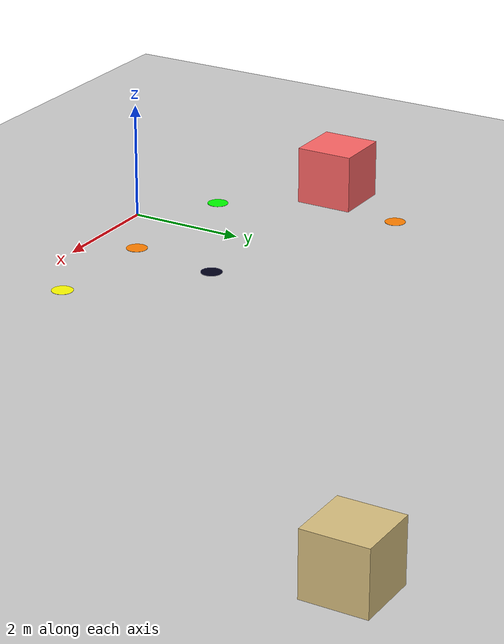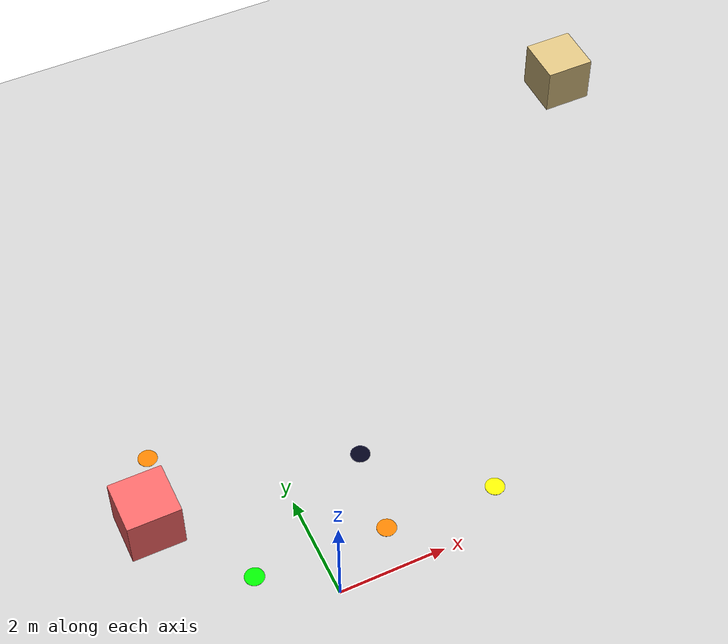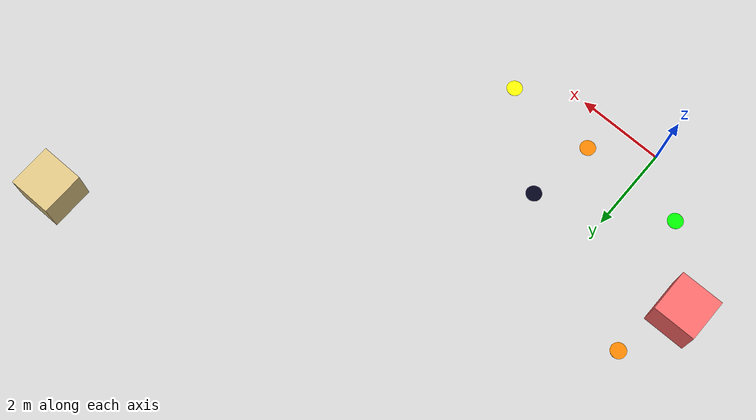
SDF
<sdf version="1.7">
 <world name="default">
  <model name="ground_plane">
   <static>1</static>
   <link name="link">
    <collision name="collision">
     <geometry><plane><normal>0 0 1</normal><size>100 100</size></plane></geometry>
     <surface><friction><ode><mu>100</mu><mu2>50</mu2></ode></friction></surface>
    </collision>
    <visual name="visual">
     <cast_shadows>0</cast_shadows>
     <geometry><plane><normal>0 0 1</normal><size>100 100</size></plane></geometry>
     <material>
      <script><uri>file://media/materials/scripts/gazebo.material</uri><name>Gazebo/Grey</name></script>
     </material>
    </visual>
   </link>
  </model>
  <model name="unit_box_clone">
   <link name="link">
    <inertial>
     <mass>1</mass>
     <inertia>
      <ixx>0.166667</ixx>
      <ixy>0</ixy>
      <ixz>0</ixz>
      <iyy>0.166667</iyy>
      <iyz>0</iyz>
      <izz>0.166667</izz>
     </inertia>
    </inertial>
    <visual name="visual">
     <geometry><box><size>1 1 1</size></box></geometry>
     <material>
      <script><name>Gazebo/Grey</name><uri>file://media/materials/scripts/gazebo.material</uri></script>
      <shader type="pixel"><normal_map>__default__</normal_map></shader>
      <ambient>0.7 0.6 0.4 0</ambient>
      <diffuse>0.85 0.75 0.5 1</diffuse>
      <specular>0.4 0.35 0.2 1</specular>
      <emissive>0.12 0.1 0.05 1</emissive>
     </material>
    </visual>
    <collision name="collision">
     <geometry><box><size>1 1 1</size></box></geometry>
     <surface>
      <friction>
       <ode><mu>1</mu><mu2>1</mu2><fdir1>0 0 0</fdir1><slip1>0</slip1><slip2>0</slip2></ode>
       <torsional>
        <coefficient>1</coefficient>
        <patch_radius>0</patch_radius>
        <surface_radius>0</surface_radius>
        <use_patch_radius>1</use_patch_radius>
        <ode><slip>0</slip></ode>
       </torsional>
      </friction>
      <bounce><restitution_coefficient>0</restitution_coefficient><threshold>1e+06</threshold></bounce>
      <contact>
       <collide_without_contact>0</collide_without_contact>
       <collide_without_contact_bitmask>1</collide_without_contact_bitmask>
       <collide_bitmask>1</collide_bitmask>
       <ode>
        <soft_cfm>0</soft_cfm>
        <soft_erp>0.2</soft_erp>
        <kp>1e+13</kp>
        <kd>1</kd>
        <max_vel>0.01</max_vel>
        <min_depth>0</min_depth>
       </ode>
       <bullet>
        <split_impulse>1</split_impulse>
        <split_impulse_penetration_threshold>-0.01</split_impulse_penetration_threshold>
        <soft_cfm>0</soft_cfm>
        <soft_erp>0.2</soft_erp>
        <kp>1e+13</kp>
        <kd>1</kd>
       </bullet>
      </contact>
     </surface>
    </collision>
   </link>
   <static>0</static>
   <pose>9.42488 9.27487 0.499995 -1e-05 0 0.00016</pose>
  </model>
  <model name="unit_cylinder">
   <link name="link">
    <inertial>
     <mass>1</mass>
     <inertia><ixx>0.145833</ixx><ixy>0</ixy><ixz>0</ixz><iyy>0.145833</iyy><iyz>0</iyz><izz>0.125</izz></inertia>
    </inertial>
    <visual name="visual">
     <geometry><cylinder><radius>0.181775</radius><length>0.00464731</length></cylinder></geometry>
     <material>
      <script><name>Gazebo/Grey</name><uri>file://media/materials/scripts/gazebo.material</uri></script>
      <shader type="pixel"><normal_map>__default__</normal_map></shader>
      <ambient>1 1 0 1</ambient>
      <diffuse>1 1 0 1</diffuse>
      <specular>0.9 0.9 0.3 1</specular>
      <emissive>0.3 0.3 0 1</emissive>
     </material>
    </visual>
    <collision name="collision">
     <geometry><cylinder><radius>0.181775</radius><length>0.004647</length></cylinder></geometry>
     <surface>
      <friction>
       <ode><mu>1</mu><mu2>1</mu2><fdir1>0 0 0</fdir1><slip1>0</slip1><slip2>0</slip2></ode>
       <torsional>
        <coefficient>1</coefficient>
        <patch_radius>0</patch_radius>
        <surface_radius>0</surface_radius>
        <use_patch_radius>1</use_patch_radius>
        <ode><slip>0</slip></ode>
       </torsional>
      </friction>
      <bounce><restitution_coefficient>0</restitution_coefficient><threshold>1e+06</threshold></bounce>
      <contact>
       <collide_without_contact>0</collide_without_contact>
       <collide_without_contact_bitmask>1</collide_without_contact_bitmask>
       <collide_bitmask>1</collide_bitmask>
       <ode>
        <soft_cfm>0</soft_cfm>
        <soft_erp>0.2</soft_erp>
        <kp>1e+13</kp>
        <kd>1</kd>
        <max_vel>0.01</max_vel>
        <min_depth>0</min_depth>
       </ode>
       <bullet>
        <split_impulse>1</split_impulse>
        <split_impulse_penetration_threshold>-0.01</split_impulse_penetration_threshold>
        <soft_cfm>0</soft_cfm>
        <soft_erp>0.2</soft_erp>
        <kp>1e+13</kp>
        <kd>1</kd>
       </bullet>
      </contact>
     </surface>
    </collision>
   </link>
   <static>0</static>
   <pose>3.39944 0.760819 0.002314 0 -0 0</pose>
  </model>
  <model name="unit_cylinder_clone">
   <link name="link">
    <inertial>
     <mass>1</mass>
     <inertia><ixx>0.145833</ixx><ixy>0</ixy><ixz>0</ixz><iyy>0.145833</iyy><iyz>0</iyz><izz>0.125</izz></inertia>
    </inertial>
    <visual name="visual">
     <geometry><cylinder><radius>0.181775</radius><length>0.00464731</length></cylinder></geometry>
     <material>
      <script><name>Gazebo/Grey</name><uri>file://media/materials/scripts/gazebo.material</uri></script>
      <shader type="pixel"><normal_map>__default__</normal_map></shader>
      <ambient>1 0.5 0 1</ambient>
      <diffuse>1 0.5 0 1</diffuse>
      <specular>0.8 0.4 0 1</specular>
      <emissive>0.2 0.1 0 1</emissive>
     </material>
    </visual>
    <collision name="collision">
     <geometry><cylinder><radius>0.181775</radius><length>0.004647</length></cylinder></geometry>
     <surface>
      <friction>
       <ode><mu>1</mu><mu2>1</mu2><fdir1>0 0 0</fdir1><slip1>0</slip1><slip2>0</slip2></ode>
       <torsional>
        <coefficient>1</coefficient>
        <patch_radius>0</patch_radius>
        <surface_radius>0</surface_radius>
        <use_patch_radius>1</use_patch_radius>
        <ode><slip>0</slip></ode>
       </torsional>
      </friction>
      <bounce><restitution_coefficient>0</restitution_coefficient><threshold>1e+06</threshold></bounce>
      <contact>
       <collide_without_contact>0</collide_without_contact>
       <collide_without_contact_bitmask>1</collide_without_contact_bitmask>
       <collide_bitmask>1</collide_bitmask>
       <ode>
        <soft_cfm>0</soft_cfm>
        <soft_erp>0.2</soft_erp>
        <kp>1e+13</kp>
        <kd>1</kd>
        <max_vel>0.01</max_vel>
        <min_depth>0</min_depth>
       </ode>
       <bullet>
        <split_impulse>1</split_impulse>
        <split_impulse_penetration_threshold>-0.01</split_impulse_penetration_threshold>
        <soft_cfm>0</soft_cfm>
        <soft_erp>0.2</soft_erp>
        <kp>1e+13</kp>
        <kd>1</kd>
       </bullet>
      </contact>
     </surface>
    </collision>
   </link>
   <static>0</static>
   <pose>1.27766 0.818715 0.002314 0 -0 0</pose>
  </model>
  <model name="unit_cylinder_clone_clone_clone">
   <link name="link">
    <inertial>
     <mass>1</mass>
     <inertia><ixx>0.145833</ixx><ixy>0</ixy><ixz>0</ixz><iyy>0.145833</iyy><iyz>0</iyz><izz>0.125</izz></inertia>
    </inertial>
    <visual name="visual">
     <geometry><cylinder><radius>0.181775</radius><length>0.00464731</length></cylinder></geometry>
     <material>
      <script><name>Gazebo/Grey</name><uri>file://media/materials/scripts/gazebo.material</uri></script>
      <shader type="pixel"><normal_map>__default__</normal_map></shader>
      <ambient>0 0 0.1 1</ambient>
      <diffuse>0 0 0.1 1</diffuse>
      <specular>0.3 0.3 0.8 1</specular>
      <emissive>0 0 0.2 1</emissive>
     </material>
    </visual>
    <collision name="collision">
     <geometry><cylinder><radius>0.181775</radius><length>0.004647</length></cylinder></geometry>
     <surface>
      <friction>
       <ode><mu>1</mu><mu2>1</mu2><fdir1>0 0 0</fdir1><slip1>0</slip1><slip2>0</slip2></ode>
       <torsional>
        <coefficient>1</coefficient>
        <patch_radius>0</patch_radius>
        <surface_radius>0</surface_radius>
        <use_patch_radius>1</use_patch_radius>
        <ode><slip>0</slip></ode>
       </torsional>
      </friction>
      <bounce><restitution_coefficient>0</restitution_coefficient><threshold>1e+06</threshold></bounce>
      <contact>
       <collide_without_contact>0</collide_without_contact>
       <collide_without_contact_bitmask>1</collide_without_contact_bitmask>
       <collide_bitmask>1</collide_bitmask>
       <ode>
        <soft_cfm>0</soft_cfm>
        <soft_erp>0.2</soft_erp>
        <kp>1e+13</kp>
        <kd>1</kd>
        <max_vel>0.01</max_vel>
        <min_depth>0</min_depth>
       </ode>
       <bullet>
        <split_impulse>1</split_impulse>
        <split_impulse_penetration_threshold>-0.01</split_impulse_penetration_threshold>
        <soft_cfm>0</soft_cfm>
        <soft_erp>0.2</soft_erp>
        <kp>1e+13</kp>
        <kd>1</kd>
       </bullet>
      </contact>
     </surface>
    </collision>
   </link>
   <static>0</static>
   <pose>1.52129 2.43036 0.002314 0 -0 0</pose>
  </model>
  <model name="unit_cylinder_clone_clone_0">
   <link name="link">
    <inertial>
     <mass>1</mass>
     <inertia><ixx>0.145833</ixx><ixy>0</ixy><ixz>0</ixz><iyy>0.145833</iyy><iyz>0</iyz><izz>0.125</izz></inertia>
    </inertial>
    <visual name="visual">
     <geometry><cylinder><radius>0.181775</radius><length>0.00464731</length></cylinder></geometry>
     <material>
      <script><name>Gazebo/Grey</name><uri>file://media/materials/scripts/gazebo.material</uri></script>
      <shader type="pixel"><normal_map>__default__</normal_map></shader>
      <ambient>1 0.5 0 1</ambient>
      <diffuse>1 0.5 0 1</diffuse>
      <specular>0.8 0.4 0 1</specular>
      <emissive>0.2 0.1 0 1</emissive>
     </material>
    </visual>
    <collision name="collision">
     <geometry><cylinder><radius>0.181775</radius><length>0.004647</length></cylinder></geometry>
     <surface>
      <friction>
       <ode><mu>1</mu><mu2>1</mu2><fdir1>0 0 0</fdir1><slip1>0</slip1><slip2>0</slip2></ode>
       <torsional>
        <coefficient>1</coefficient>
        <patch_radius>0</patch_radius>
        <surface_radius>0</surface_radius>
        <use_patch_radius>1</use_patch_radius>
        <ode><slip>0</slip></ode>
       </torsional>
      </friction>
      <bounce><restitution_coefficient>0</restitution_coefficient><threshold>1e+06</threshold></bounce>
      <contact>
       <collide_without_contact>0</collide_without_contact>
       <collide_without_contact_bitmask>1</collide_without_contact_bitmask>
       <collide_bitmask>1</collide_bitmask>
       <ode>
        <soft_cfm>0</soft_cfm>
        <soft_erp>0.2</soft_erp>
        <kp>1e+13</kp>
        <kd>1</kd>
        <max_vel>0.01</max_vel>
        <min_depth>0</min_depth>
       </ode>
       <bullet>
        <split_impulse>1</split_impulse>
        <split_impulse_penetration_threshold>-0.01</split_impulse_penetration_threshold>
        <soft_cfm>0</soft_cfm>
        <soft_erp>0.2</soft_erp>
        <kp>1e+13</kp>
        <kd>1</kd>
       </bullet>
      </contact>
     </surface>
    </collision>
   </link>
   <static>0</static>
   <pose>-2 4 0.002314 0 -0 0</pose>
  </model>
  <model name="unit_cylinder_clone_clone_clone_0">
   <link name="link">
    <inertial>
     <mass>1</mass>
     <inertia><ixx>0.145833</ixx><ixy>0</ixy><ixz>0</ixz><iyy>0.145833</iyy><iyz>0</iyz><izz>0.125</izz></inertia>
    </inertial>
    <visual name="visual">
     <geometry><cylinder><radius>0.181775</radius><length>0.00464731</length></cylinder></geometry>
     <material>
      <script><name>Gazebo/Grey</name><uri>file://media/materials/scripts/gazebo.material</uri></script>
      <shader type="pixel"><normal_map>__default__</normal_map></shader>
      <ambient>0 0.5 0 1</ambient>
      <diffuse>0 1 0 1</diffuse>
      <specular>0.5 1 0.5 1</specular>
      <emissive>0 0.2 0 1</emissive>
     </material>
    </visual>
    <collision name="collision">
     <geometry><cylinder><radius>0.181775</radius><length>0.004647</length></cylinder></geometry>
     <surface>
      <friction>
       <ode><mu>1</mu><mu2>1</mu2><fdir1>0 0 0</fdir1><slip1>0</slip1><slip2>0</slip2></ode>
       <torsional>
        <coefficient>1</coefficient>
        <patch_radius>0</patch_radius>
        <surface_radius>0</surface_radius>
        <use_patch_radius>1</use_patch_radius>
        <ode><slip>0</slip></ode>
       </torsional>
      </friction>
      <bounce><restitution_coefficient>0</restitution_coefficient><threshold>1e+06</threshold></bounce>
      <contact>
       <collide_without_contact>0</collide_without_contact>
       <collide_without_contact_bitmask>1</collide_without_contact_bitmask>
       <collide_bitmask>1</collide_bitmask>
       <ode>
        <soft_cfm>0</soft_cfm>
        <soft_erp>0.2</soft_erp>
        <kp>1e+13</kp>
        <kd>1</kd>
        <max_vel>0.01</max_vel>
        <min_depth>0</min_depth>
       </ode>
       <bullet>
        <split_impulse>1</split_impulse>
        <split_impulse_penetration_threshold>-0.01</split_impulse_penetration_threshold>
        <soft_cfm>0</soft_cfm>
        <soft_erp>0.2</soft_erp>
        <kp>1e+13</kp>
        <kd>1</kd>
       </bullet>
      </contact>
     </surface>
    </collision>
   </link>
   <static>0</static>
   <pose>-1.20309 0.911116 0.002314 0 -0 0</pose>
  </model>
  <model name="unit_box_clone_clone">
   <link name="link">
    <inertial>
     <mass>1</mass>
     <inertia>
      <ixx>0.166667</ixx>
      <ixy>0</ixy>
      <ixz>0</ixz>
      <iyy>0.166667</iyy>
      <iyz>0</iyz>
      <izz>0.166667</izz>
     </inertia>
    </inertial>
    <visual name="visual">
     <geometry><box><size>1 1 1</size></box></geometry>
     <material>
      <script><name>Gazebo/Grey</name><uri>file://media/materials/scripts/gazebo.material</uri></script>
      <shader type="pixel"><normal_map>__default__</normal_map></shader>
      <ambient>0.8 0.3 0.3 1</ambient>
      <diffuse>1 0.4 0.4 1</diffuse>
      <specular>0.5 0.2 0.2 1</specular>
      <emissive>0.3 0.1 0.1 1</emissive>
     </material>
    </visual>
    <collision name="collision">
     <geometry><box><size>1 1 1</size></box></geometry>
     <surface>
      <friction>
       <ode><mu>1</mu><mu2>1</mu2><fdir1>0 0 0</fdir1><slip1>0</slip1><slip2>0</slip2></ode>
       <torsional>
        <coefficient>1</coefficient>
        <patch_radius>0</patch_radius>
        <surface_radius>0</surface_radius>
        <use_patch_radius>1</use_patch_radius>
        <ode><slip>0</slip></ode>
       </torsional>
      </friction>
      <bounce><restitution_coefficient>0</restitution_coefficient><threshold>1e+06</threshold></bounce>
      <contact>
       <collide_without_contact>0</collide_without_contact>
       <collide_without_contact_bitmask>1</collide_without_contact_bitmask>
       <collide_bitmask>1</collide_bitmask>
       <ode>
        <soft_cfm>0</soft_cfm>
        <soft_erp>0.2</soft_erp>
        <kp>1e+13</kp>
        <kd>1</kd>
        <max_vel>0.01</max_vel>
        <min_depth>0</min_depth>
       </ode>
       <bullet>
        <split_impulse>1</split_impulse>
        <split_impulse_penetration_threshold>-0.01</split_impulse_penetration_threshold>
        <soft_cfm>0</soft_cfm>
        <soft_erp>0.2</soft_erp>
        <kp>1e+13</kp>
        <kd>1</kd>
       </bullet>
      </contact>
     </surface>
    </collision>
   </link>
   <static>0</static>
   <pose>-2.48665 2.58995 0.499995 0 1e-05 -3e-06</pose>
  </model>
 </world>
</sdf>
